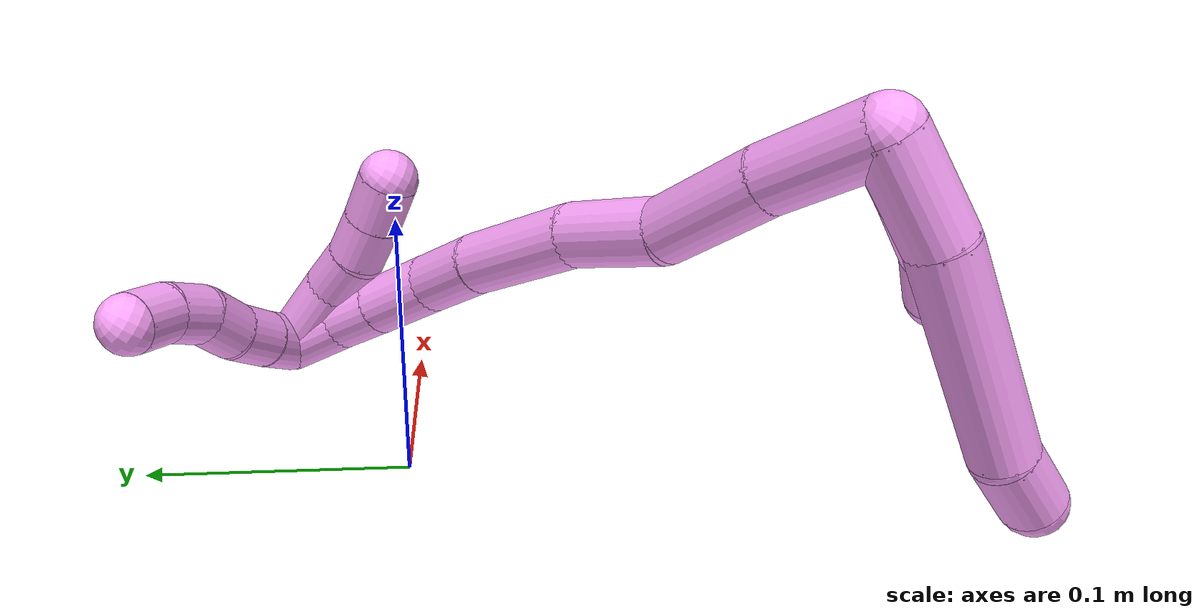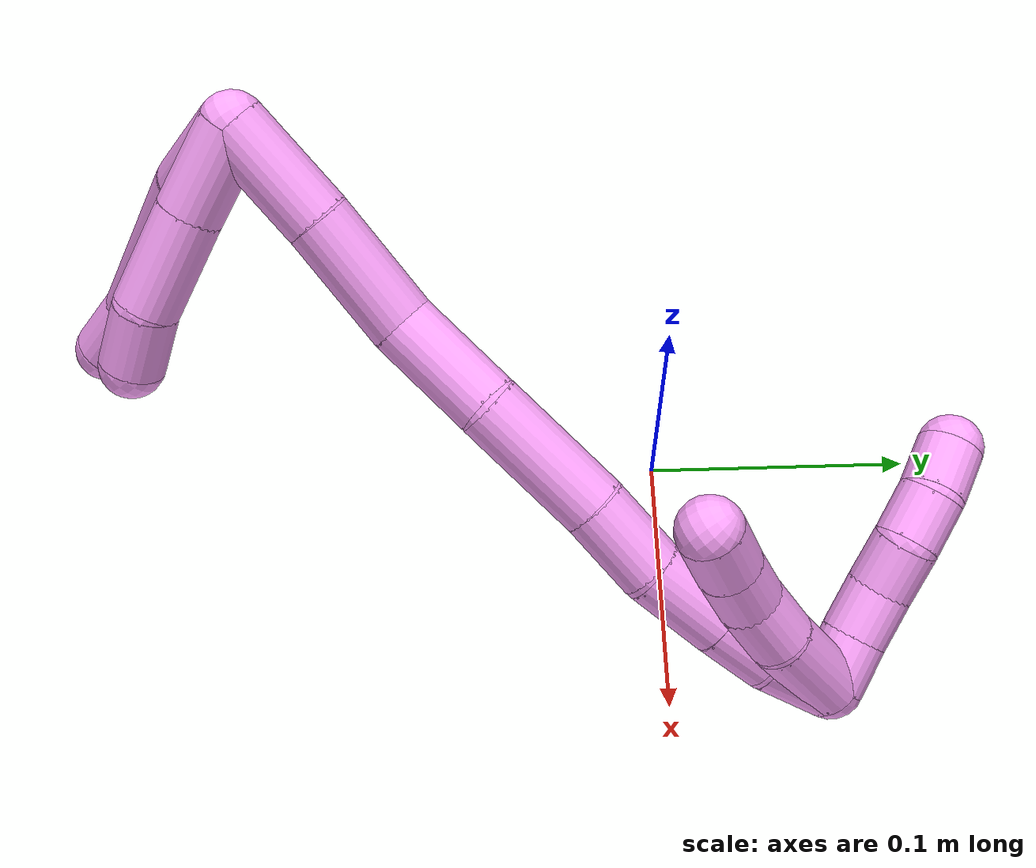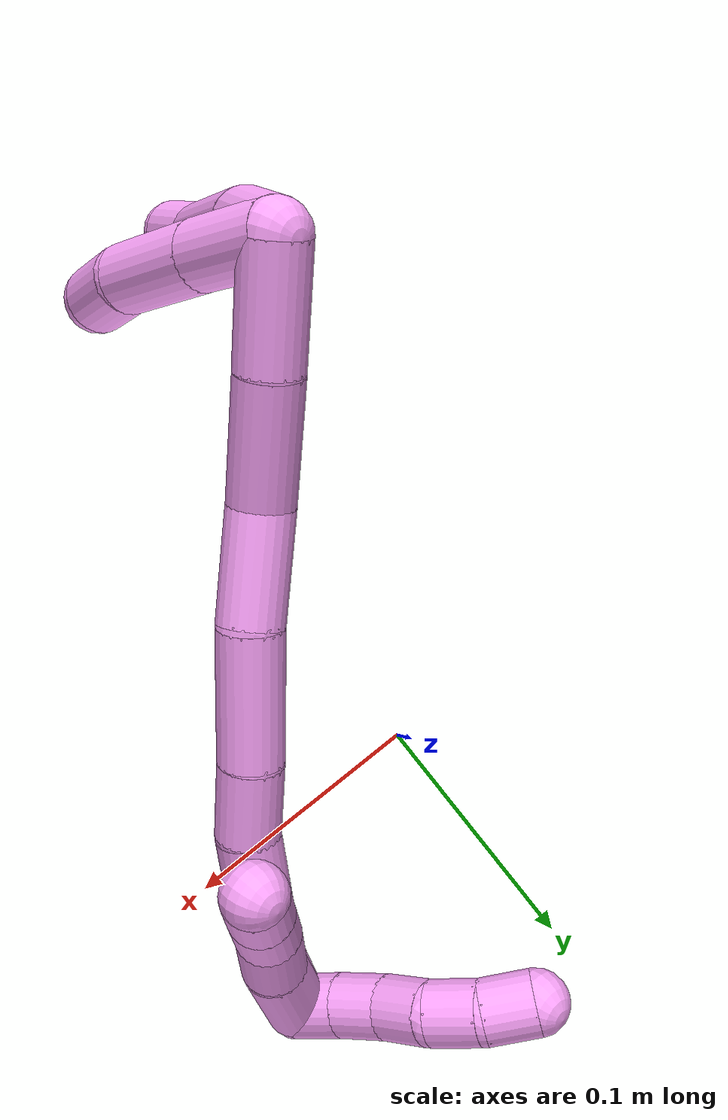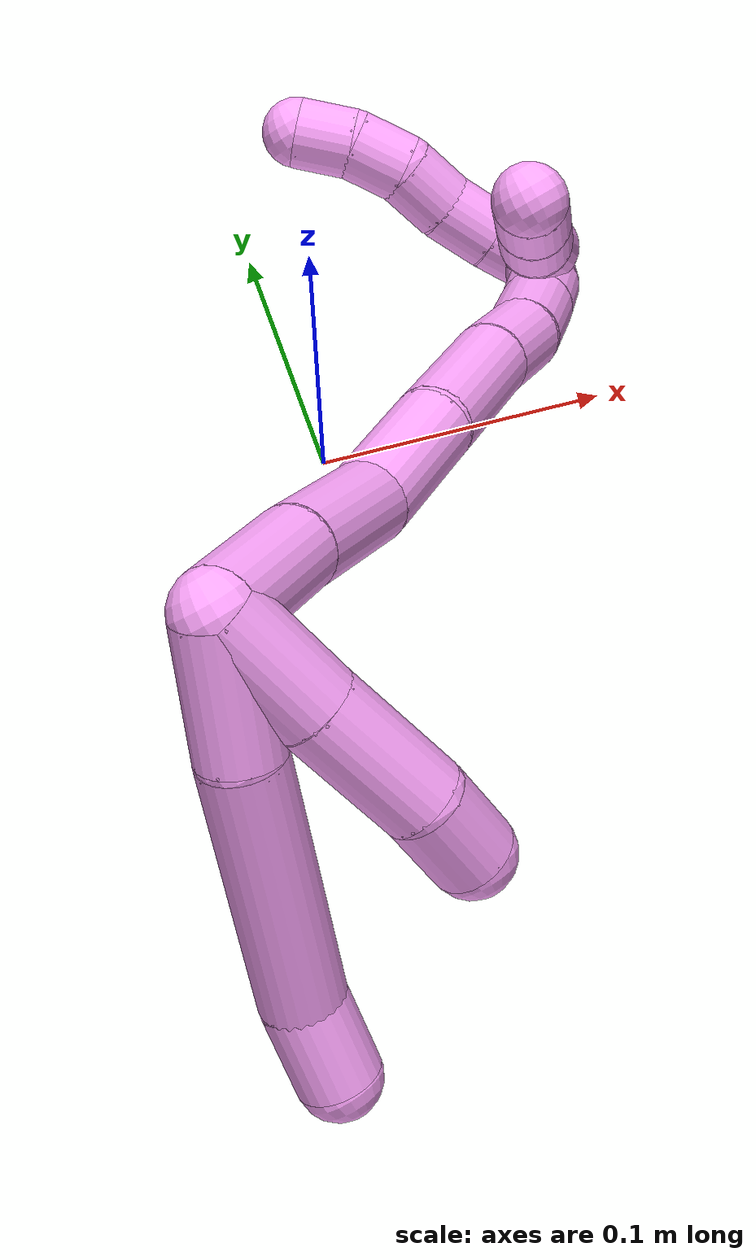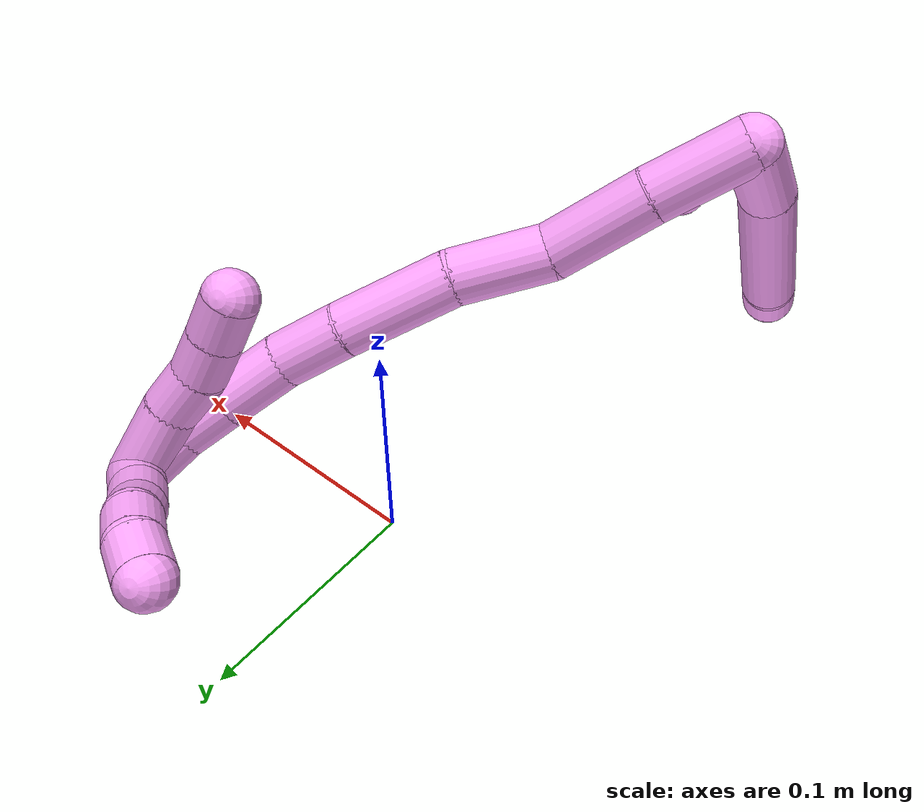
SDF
<sdf version="1.7">
 <world name="default">
  <model name="4">
   <static>0</static>
   <link name="4">
    <collision name="collision-cylinder-e_1_2_8">
     <pose>-0.006586 0.006224 -0.017818 -2.80554 -0.33571 1.56974</pose>
     <geometry><cylinder><radius>0.0125</radius><length>0.03998</length></cylinder></geometry>
     <surface>
      <friction><ode><mu>1.16</mu><mu2>1.16</mu2><slip1>0</slip1><slip2>0</slip2></ode></friction>
      <contact><ode><kp>1e+06</kp><kd>1</kd><max_vel>0</max_vel><min_depth>0.001</min_depth></ode></contact>
     </surface>
    </collision>
    <visual name="visual-cylinder-e_1_2_8">
     <pose>-0.006586 0.006224 -0.017818 -2.80554 -0.33571 1.56974</pose>
     <geometry><cylinder><radius>0.0125</radius><length>0.03998</length></cylinder></geometry>
     <material><ambient>1 0.65098 0.996078 1</ambient></material>
    </visual>
    <collision name="collision-cylinder-e_2_8_9">
     <pose>-0.023444 0.030464 -0.071618 -2.67739 -0.249963 0.977123</pose>
     <geometry><cylinder><radius>0.0125</radius><length>0.083059</length></cylinder></geometry>
     <surface>
      <friction><ode><mu>1.16</mu><mu2>1.16</mu2><slip1>0</slip1><slip2>0</slip2></ode></friction>
      <contact><ode><kp>1e+06</kp><kd>1</kd><max_vel>0</max_vel><min_depth>0.001</min_depth></ode></contact>
     </surface>
    </collision>
    <visual name="visual-cylinder-e_2_8_9">
     <pose>-0.023444 0.030464 -0.071618 -2.67739 -0.249963 0.977123</pose>
     <geometry><cylinder><radius>0.0125</radius><length>0.083059</length></cylinder></geometry>
     <material><ambient>1 0.65098 0.996078 1</ambient></material>
    </visual>
    <collision name="collision-cylinder-e_3_9_6">
     <pose>-0.035208 0.051536 -0.120643 -2.9114 -0.110844 0.894847</pose>
     <geometry><cylinder><radius>0.0125</radius><length>0.02696</length></cylinder></geometry>
     <surface>
      <friction><ode><mu>1.16</mu><mu2>1.16</mu2><slip1>0</slip1><slip2>0</slip2></ode></friction>
      <contact><ode><kp>1e+06</kp><kd>1</kd><max_vel>0</max_vel><min_depth>0.001</min_depth></ode></contact>
     </surface>
    </collision>
    <visual name="visual-cylinder-e_3_9_6">
     <pose>-0.035208 0.051536 -0.120643 -2.9114 -0.110844 0.894847</pose>
     <geometry><cylinder><radius>0.0125</radius><length>0.02696</length></cylinder></geometry>
     <material><ambient>1 0.65098 0.996078 1</ambient></material>
    </visual>
    <collision name="collision-cylinder-e_1_2_10">
     <pose>0.004621 0.00398 -0.016829 -2.90939 0.261136 -1.68913</pose>
     <geometry><cylinder><radius>0.0125</radius><length>0.035799</length></cylinder></geometry>
     <surface>
      <friction><ode><mu>1.16</mu><mu2>1.16</mu2><slip1>0</slip1><slip2>0</slip2></ode></friction>
      <contact><ode><kp>1e+06</kp><kd>1</kd><max_vel>0</max_vel><min_depth>0.001</min_depth></ode></contact>
     </surface>
    </collision>
    <visual name="visual-cylinder-e_1_2_10">
     <pose>0.004621 0.00398 -0.016829 -2.90939 0.261136 -1.68913</pose>
     <geometry><cylinder><radius>0.0125</radius><length>0.035799</length></cylinder></geometry>
     <material><ambient>1 0.65098 0.996078 1</ambient></material>
    </visual>
    <collision name="collision-cylinder-e_2_10_11">
     <pose>0.014976 0.012615 -0.051915 -2.8919 0.2954 -1.74016</pose>
     <geometry><cylinder><radius>0.0125</radius><length>0.039391</length></cylinder></geometry>
     <surface>
      <friction><ode><mu>1.16</mu><mu2>1.16</mu2><slip1>0</slip1><slip2>0</slip2></ode></friction>
      <contact><ode><kp>1e+06</kp><kd>1</kd><max_vel>0</max_vel><min_depth>0.001</min_depth></ode></contact>
     </surface>
    </collision>
    <visual name="visual-cylinder-e_2_10_11">
     <pose>0.014976 0.012615 -0.051915 -2.8919 0.2954 -1.74016</pose>
     <geometry><cylinder><radius>0.0125</radius><length>0.039391</length></cylinder></geometry>
     <material><ambient>1 0.65098 0.996078 1</ambient></material>
    </visual>
    <collision name="collision-cylinder-e_3_11_5">
     <pose>0.022797 0.022804 -0.081078 -2.67207 0.169008 -0.680756</pose>
     <geometry><cylinder><radius>0.0125</radius><length>0.02481</length></cylinder></geometry>
     <surface>
      <friction><ode><mu>1.16</mu><mu2>1.16</mu2><slip1>0</slip1><slip2>0</slip2></ode></friction>
      <contact><ode><kp>1e+06</kp><kd>1</kd><max_vel>0</max_vel><min_depth>0.001</min_depth></ode></contact>
     </surface>
    </collision>
    <visual name="visual-cylinder-e_3_11_5">
     <pose>0.022797 0.022804 -0.081078 -2.67207 0.169008 -0.680756</pose>
     <geometry><cylinder><radius>0.0125</radius><length>0.02481</length></cylinder></geometry>
     <material><ambient>1 0.65098 0.996078 1</ambient></material>
    </visual>
    <collision name="collision-cylinder-e_1_2_12">
     <pose>0.012649 0.018059 4.9e-05 -1.5681 0.61099 -0.609446</pose>
     <geometry><cylinder><radius>0.0125</radius><length>0.044096</length></cylinder></geometry>
     <surface>
      <friction><ode><mu>1.16</mu><mu2>1.16</mu2><slip1>0</slip1><slip2>0</slip2></ode></friction>
      <contact><ode><kp>1e+06</kp><kd>1</kd><max_vel>0</max_vel><min_depth>0.001</min_depth></ode></contact>
     </surface>
    </collision>
    <visual name="visual-cylinder-e_1_2_12">
     <pose>0.012649 0.018059 4.9e-05 -1.5681 0.61099 -0.609446</pose>
     <geometry><cylinder><radius>0.0125</radius><length>0.044096</length></cylinder></geometry>
     <material><ambient>1 0.65098 0.996078 1</ambient></material>
    </visual>
    <collision name="collision-cylinder-e_2_12_13">
     <pose>0.038 0.055983 -0.00149 -1.65055 0.567487 -0.611867</pose>
     <geometry><cylinder><radius>0.0125</radius><length>0.047265</length></cylinder></geometry>
     <surface>
      <friction><ode><mu>1.16</mu><mu2>1.16</mu2><slip1>0</slip1><slip2>0</slip2></ode></friction>
      <contact><ode><kp>1e+06</kp><kd>1</kd><max_vel>0</max_vel><min_depth>0.001</min_depth></ode></contact>
     </surface>
    </collision>
    <visual name="visual-cylinder-e_2_12_13">
     <pose>0.038 0.055983 -0.00149 -1.65055 0.567487 -0.611867</pose>
     <geometry><cylinder><radius>0.0125</radius><length>0.047265</length></cylinder></geometry>
     <material><ambient>1 0.65098 0.996078 1</ambient></material>
    </visual>
    <collision name="collision-cylinder-e_3_13_14">
     <pose>0.065845 0.090273 0.000365 -1.33647 0.795801 -0.64073</pose>
     <geometry><cylinder><radius>0.0125</radius><length>0.04239</length></cylinder></geometry>
     <surface>
      <friction><ode><mu>1.16</mu><mu2>1.16</mu2><slip1>0</slip1><slip2>0</slip2></ode></friction>
      <contact><ode><kp>1e+06</kp><kd>1</kd><max_vel>0</max_vel><min_depth>0.001</min_depth></ode></contact>
     </surface>
    </collision>
    <visual name="visual-cylinder-e_3_13_14">
     <pose>0.065845 0.090273 0.000365 -1.33647 0.795801 -0.64073</pose>
     <geometry><cylinder><radius>0.0125</radius><length>0.04239</length></cylinder></geometry>
     <material><ambient>1 0.65098 0.996078 1</ambient></material>
    </visual>
    <collision name="collision-cylinder-e_4_14_15">
     <pose>0.096262 0.12571 0.006252 -1.45506 0.625388 -0.560624</pose>
     <geometry><cylinder><radius>0.0125</radius><length>0.052183</length></cylinder></geometry>
     <surface>
      <friction><ode><mu>1.16</mu><mu2>1.16</mu2><slip1>0</slip1><slip2>0</slip2></ode></friction>
      <contact><ode><kp>1e+06</kp><kd>1</kd><max_vel>0</max_vel><min_depth>0.001</min_depth></ode></contact>
     </surface>
    </collision>
    <visual name="visual-cylinder-e_4_14_15">
     <pose>0.096262 0.12571 0.006252 -1.45506 0.625388 -0.560624</pose>
     <geometry><cylinder><radius>0.0125</radius><length>0.052183</length></cylinder></geometry>
     <material><ambient>1 0.65098 0.996078 1</ambient></material>
    </visual>
    <collision name="collision-cylinder-e_5_15_16">
     <pose>0.120392 0.159453 0.008764 -1.5653 0.607782 -0.604648</pose>
     <geometry><cylinder><radius>0.0125</radius><length>0.031017</length></cylinder></geometry>
     <surface>
      <friction><ode><mu>1.16</mu><mu2>1.16</mu2><slip1>0</slip1><slip2>0</slip2></ode></friction>
      <contact><ode><kp>1e+06</kp><kd>1</kd><max_vel>0</max_vel><min_depth>0.001</min_depth></ode></contact>
     </surface>
    </collision>
    <visual name="visual-cylinder-e_5_15_16">
     <pose>0.120392 0.159453 0.008764 -1.5653 0.607782 -0.604648</pose>
     <geometry><cylinder><radius>0.0125</radius><length>0.031017</length></cylinder></geometry>
     <material><ambient>1 0.65098 0.996078 1</ambient></material>
    </visual>
    <collision name="collision-cylinder-e_6_16_17">
     <pose>0.136355 0.186434 0.010896 -1.42709 0.458516 -0.398682</pose>
     <geometry><cylinder><radius>0.0125</radius><length>0.032115</length></cylinder></geometry>
     <surface>
      <friction><ode><mu>1.16</mu><mu2>1.16</mu2><slip1>0</slip1><slip2>0</slip2></ode></friction>
      <contact><ode><kp>1e+06</kp><kd>1</kd><max_vel>0</max_vel><min_depth>0.001</min_depth></ode></contact>
     </surface>
    </collision>
    <visual name="visual-cylinder-e_6_16_17">
     <pose>0.136355 0.186434 0.010896 -1.42709 0.458516 -0.398682</pose>
     <geometry><cylinder><radius>0.0125</radius><length>0.032115</length></cylinder></geometry>
     <material><ambient>1 0.65098 0.996078 1</ambient></material>
    </visual>
    <collision name="collision-cylinder-e_7_17_18">
     <pose>0.148409 0.211078 0.014855 -1.39032 0.437844 -0.366957</pose>
     <geometry><cylinder><radius>0.0125</radius><length>0.02333</length></cylinder></geometry>
     <surface>
      <friction><ode><mu>1.16</mu><mu2>1.16</mu2><slip1>0</slip1><slip2>0</slip2></ode></friction>
      <contact><ode><kp>1e+06</kp><kd>1</kd><max_vel>0</max_vel><min_depth>0.001</min_depth></ode></contact>
     </surface>
    </collision>
    <visual name="visual-cylinder-e_7_17_18">
     <pose>0.148409 0.211078 0.014855 -1.39032 0.437844 -0.366957</pose>
     <geometry><cylinder><radius>0.0125</radius><length>0.02333</length></cylinder></geometry>
     <material><ambient>1 0.65098 0.996078 1</ambient></material>
    </visual>
    <collision name="collision-cylinder-e_8_18_1">
     <pose>0.157134 0.234235 0.020395 -1.29271 0.277416 -0.209881</pose>
     <geometry><cylinder><radius>0.0125</radius><length>0.027603</length></cylinder></geometry>
     <surface>
      <friction><ode><mu>1.16</mu><mu2>1.16</mu2><slip1>0</slip1><slip2>0</slip2></ode></friction>
      <contact><ode><kp>1e+06</kp><kd>1</kd><max_vel>0</max_vel><min_depth>0.001</min_depth></ode></contact>
     </surface>
    </collision>
    <visual name="visual-cylinder-e_8_18_1">
     <pose>0.157134 0.234235 0.020395 -1.29271 0.277416 -0.209881</pose>
     <geometry><cylinder><radius>0.0125</radius><length>0.027603</length></cylinder></geometry>
     <material><ambient>1 0.65098 0.996078 1</ambient></material>
    </visual>
    <collision name="collision-cylinder-e_1_1_19">
     <pose>0.159232 0.228795 0.026402 1.44171 -0.091364 -0.080284</pose>
     <geometry><cylinder><radius>0.0125</radius><length>0.036868</length></cylinder></geometry>
     <surface>
      <friction><ode><mu>1.16</mu><mu2>1.16</mu2><slip1>0</slip1><slip2>0</slip2></ode></friction>
      <contact><ode><kp>1e+06</kp><kd>1</kd><max_vel>0</max_vel><min_depth>0.001</min_depth></ode></contact>
     </surface>
    </collision>
    <visual name="visual-cylinder-e_1_1_19">
     <pose>0.159232 0.228795 0.026402 1.44171 -0.091364 -0.080284</pose>
     <geometry><cylinder><radius>0.0125</radius><length>0.036868</length></cylinder></geometry>
     <material><ambient>1 0.65098 0.996078 1</ambient></material>
    </visual>
    <collision name="collision-cylinder-e_2_19_20">
     <pose>0.154722 0.200072 0.030603 1.39784 -0.258981 -0.218017</pose>
     <geometry><cylinder><radius>0.0125</radius><length>0.022093</length></cylinder></geometry>
     <surface>
      <friction><ode><mu>1.16</mu><mu2>1.16</mu2><slip1>0</slip1><slip2>0</slip2></ode></friction>
      <contact><ode><kp>1e+06</kp><kd>1</kd><max_vel>0</max_vel><min_depth>0.001</min_depth></ode></contact>
     </surface>
    </collision>
    <visual name="visual-cylinder-e_2_19_20">
     <pose>0.154722 0.200072 0.030603 1.39784 -0.258981 -0.218017</pose>
     <geometry><cylinder><radius>0.0125</radius><length>0.022093</length></cylinder></geometry>
     <material><ambient>1 0.65098 0.996078 1</ambient></material>
    </visual>
    <collision name="collision-cylinder-e_3_20_21">
     <pose>0.151034 0.179948 0.035489 1.26341 -0.08504 -0.062244</pose>
     <geometry><cylinder><radius>0.0125</radius><length>0.020227</length></cylinder></geometry>
     <surface>
      <friction><ode><mu>1.16</mu><mu2>1.16</mu2><slip1>0</slip1><slip2>0</slip2></ode></friction>
      <contact><ode><kp>1e+06</kp><kd>1</kd><max_vel>0</max_vel><min_depth>0.001</min_depth></ode></contact>
     </surface>
    </collision>
    <visual name="visual-cylinder-e_3_20_21">
     <pose>0.151034 0.179948 0.035489 1.26341 -0.08504 -0.062244</pose>
     <geometry><cylinder><radius>0.0125</radius><length>0.020227</length></cylinder></geometry>
     <material><ambient>1 0.65098 0.996078 1</ambient></material>
    </visual>
    <collision name="collision-cylinder-e_4_21_4">
     <pose>0.149435 0.160618 0.042165 1.2139 -0.07109 -0.049375</pose>
     <geometry><cylinder><radius>0.0125</radius><length>0.020812</length></cylinder></geometry>
     <surface>
      <friction><ode><mu>1.16</mu><mu2>1.16</mu2><slip1>0</slip1><slip2>0</slip2></ode></friction>
      <contact><ode><kp>1e+06</kp><kd>1</kd><max_vel>0</max_vel><min_depth>0.001</min_depth></ode></contact>
     </surface>
    </collision>
    <visual name="visual-cylinder-e_4_21_4">
     <pose>0.149435 0.160618 0.042165 1.2139 -0.07109 -0.049375</pose>
     <geometry><cylinder><radius>0.0125</radius><length>0.020812</length></cylinder></geometry>
     <material><ambient>1 0.65098 0.996078 1</ambient></material>
    </visual>
    <collision name="collision-cylinder-e_1_1_22">
     <pose>0.155438 0.24632 0.032378 0.081247 -0.57955 -0.024237</pose>
     <geometry><cylinder><radius>0.0125</radius><length>0.02</length></cylinder></geometry>
     <surface>
      <friction><ode><mu>1.16</mu><mu2>1.16</mu2><slip1>0</slip1><slip2>0</slip2></ode></friction>
      <contact><ode><kp>1e+06</kp><kd>1</kd><max_vel>0</max_vel><min_depth>0.001</min_depth></ode></contact>
     </surface>
    </collision>
    <visual name="visual-cylinder-e_1_1_22">
     <pose>0.155438 0.24632 0.032378 0.081247 -0.57955 -0.024237</pose>
     <geometry><cylinder><radius>0.0125</radius><length>0.02</length></cylinder></geometry>
     <material><ambient>1 0.65098 0.996078 1</ambient></material>
    </visual>
    <collision name="collision-cylinder-e_2_22_23">
     <pose>0.145107 0.24474 0.049414 0.103205 -0.50683 -0.02675</pose>
     <geometry><cylinder><radius>0.0125</radius><length>0.02</length></cylinder></geometry>
     <surface>
      <friction><ode><mu>1.16</mu><mu2>1.16</mu2><slip1>0</slip1><slip2>0</slip2></ode></friction>
      <contact><ode><kp>1e+06</kp><kd>1</kd><max_vel>0</max_vel><min_depth>0.001</min_depth></ode></contact>
     </surface>
    </collision>
    <visual name="visual-cylinder-e_2_22_23">
     <pose>0.145107 0.24474 0.049414 0.103205 -0.50683 -0.02675</pose>
     <geometry><cylinder><radius>0.0125</radius><length>0.02</length></cylinder></geometry>
     <material><ambient>1 0.65098 0.996078 1</ambient></material>
    </visual>
    <collision name="collision-cylinder-e_3_23_24">
     <pose>0.13674 0.241659 0.067216 0.235079 -0.358919 -0.042837</pose>
     <geometry><cylinder><radius>0.0125</radius><length>0.02</length></cylinder></geometry>
     <surface>
      <friction><ode><mu>1.16</mu><mu2>1.16</mu2><slip1>0</slip1><slip2>0</slip2></ode></friction>
      <contact><ode><kp>1e+06</kp><kd>1</kd><max_vel>0</max_vel><min_depth>0.001</min_depth></ode></contact>
     </surface>
    </collision>
    <visual name="visual-cylinder-e_3_23_24">
     <pose>0.13674 0.241659 0.067216 0.235079 -0.358919 -0.042837</pose>
     <geometry><cylinder><radius>0.0125</radius><length>0.02</length></cylinder></geometry>
     <material><ambient>1 0.65098 0.996078 1</ambient></material>
    </visual>
    <collision name="collision-cylinder-e_4_24_25">
     <pose>0.127498 0.239649 0.084515 -0.020862 -0.61017 0.00657</pose>
     <geometry><cylinder><radius>0.0125</radius><length>0.02</length></cylinder></geometry>
     <surface>
      <friction><ode><mu>1.16</mu><mu2>1.16</mu2><slip1>0</slip1><slip2>0</slip2></ode></friction>
      <contact><ode><kp>1e+06</kp><kd>1</kd><max_vel>0</max_vel><min_depth>0.001</min_depth></ode></contact>
     </surface>
    </collision>
    <visual name="visual-cylinder-e_4_24_25">
     <pose>0.127498 0.239649 0.084515 -0.020862 -0.61017 0.00657</pose>
     <geometry><cylinder><radius>0.0125</radius><length>0.02</length></cylinder></geometry>
     <material><ambient>1 0.65098 0.996078 1</ambient></material>
    </visual>
    <collision name="collision-cylinder-e_5_25_3">
     <pose>0.11436 0.241137 0.099296 -0.197345 -0.834167 0.087668</pose>
     <geometry><cylinder><radius>0.0125</radius><length>0.02</length></cylinder></geometry>
     <surface>
      <friction><ode><mu>1.16</mu><mu2>1.16</mu2><slip1>0</slip1><slip2>0</slip2></ode></friction>
      <contact><ode><kp>1e+06</kp><kd>1</kd><max_vel>0</max_vel><min_depth>0.001</min_depth></ode></contact>
     </surface>
    </collision>
    <visual name="visual-cylinder-e_5_25_3">
     <pose>0.11436 0.241137 0.099296 -0.197345 -0.834167 0.087668</pose>
     <geometry><cylinder><radius>0.0125</radius><length>0.02</length></cylinder></geometry>
     <material><ambient>1 0.65098 0.996078 1</ambient></material>
    </visual>
    <collision name="collision-sphere-3">
     <pose>0.106953 0.242454 0.105884 0 -0 0</pose>
     <geometry><sphere><radius>0.0125</radius></sphere></geometry>
     <surface>
      <friction><ode><mu>1.16</mu><mu2>1.16</mu2><slip1>0</slip1><slip2>0</slip2></ode></friction>
      <contact><ode><kp>1e+06</kp><kd>1</kd><max_vel>0</max_vel><min_depth>0.001</min_depth></ode></contact>
     </surface>
    </collision>
    <visual name="visual-sphere-3">
     <pose>0.106953 0.242454 0.105884 0 -0 0</pose>
     <geometry><sphere><radius>0.0125</radius></sphere></geometry>
     <material><ambient>1 0.65098 0.996078 1</ambient></material>
    </visual>
    <collision name="collision-sphere-25">
     <pose>0.121768 0.23982 0.092709 0 -0 0</pose>
     <geometry><sphere><radius>0.0125</radius></sphere></geometry>
     <surface>
      <friction><ode><mu>1.16</mu><mu2>1.16</mu2><slip1>0</slip1><slip2>0</slip2></ode></friction>
      <contact><ode><kp>1e+06</kp><kd>1</kd><max_vel>0</max_vel><min_depth>0.001</min_depth></ode></contact>
     </surface>
    </collision>
    <visual name="visual-sphere-25">
     <pose>0.121768 0.23982 0.092709 0 -0 0</pose>
     <geometry><sphere><radius>0.0125</radius></sphere></geometry>
     <material><ambient>1 0.65098 0.996078 1</ambient></material>
    </visual>
    <collision name="collision-sphere-24">
     <pose>0.133228 0.239478 0.076321 0 -0 0</pose>
     <geometry><sphere><radius>0.0125</radius></sphere></geometry>
     <surface>
      <friction><ode><mu>1.16</mu><mu2>1.16</mu2><slip1>0</slip1><slip2>0</slip2></ode></friction>
      <contact><ode><kp>1e+06</kp><kd>1</kd><max_vel>0</max_vel><min_depth>0.001</min_depth></ode></contact>
     </surface>
    </collision>
    <visual name="visual-sphere-24">
     <pose>0.133228 0.239478 0.076321 0 -0 0</pose>
     <geometry><sphere><radius>0.0125</radius></sphere></geometry>
     <material><ambient>1 0.65098 0.996078 1</ambient></material>
    </visual>
    <collision name="collision-sphere-23">
     <pose>0.140253 0.24384 0.058111 0 -0 0</pose>
     <geometry><sphere><radius>0.0125</radius></sphere></geometry>
     <surface>
      <friction><ode><mu>1.16</mu><mu2>1.16</mu2><slip1>0</slip1><slip2>0</slip2></ode></friction>
      <contact><ode><kp>1e+06</kp><kd>1</kd><max_vel>0</max_vel><min_depth>0.001</min_depth></ode></contact>
     </surface>
    </collision>
    <visual name="visual-sphere-23">
     <pose>0.140253 0.24384 0.058111 0 -0 0</pose>
     <geometry><sphere><radius>0.0125</radius></sphere></geometry>
     <material><ambient>1 0.65098 0.996078 1</ambient></material>
    </visual>
    <collision name="collision-sphere-22">
     <pose>0.149961 0.245641 0.040718 0 -0 0</pose>
     <geometry><sphere><radius>0.0125</radius></sphere></geometry>
     <surface>
      <friction><ode><mu>1.16</mu><mu2>1.16</mu2><slip1>0</slip1><slip2>0</slip2></ode></friction>
      <contact><ode><kp>1e+06</kp><kd>1</kd><max_vel>0</max_vel><min_depth>0.001</min_depth></ode></contact>
     </surface>
    </collision>
    <visual name="visual-sphere-22">
     <pose>0.149961 0.245641 0.040718 0 -0 0</pose>
     <geometry><sphere><radius>0.0125</radius></sphere></geometry>
     <material><ambient>1 0.65098 0.996078 1</ambient></material>
    </visual>
    <collision name="collision-sphere-4">
     <pose>0.148696 0.150892 0.045791 0 -0 0</pose>
     <geometry><sphere><radius>0.0125</radius></sphere></geometry>
     <surface>
      <friction><ode><mu>1.16</mu><mu2>1.16</mu2><slip1>0</slip1><slip2>0</slip2></ode></friction>
      <contact><ode><kp>1e+06</kp><kd>1</kd><max_vel>0</max_vel><min_depth>0.001</min_depth></ode></contact>
     </surface>
    </collision>
    <visual name="visual-sphere-4">
     <pose>0.148696 0.150892 0.045791 0 -0 0</pose>
     <geometry><sphere><radius>0.0125</radius></sphere></geometry>
     <material><ambient>1 0.65098 0.996078 1</ambient></material>
    </visual>
    <collision name="collision-sphere-21">
     <pose>0.150175 0.170344 0.038538 0 -0 0</pose>
     <geometry><sphere><radius>0.0125</radius></sphere></geometry>
     <surface>
      <friction><ode><mu>1.16</mu><mu2>1.16</mu2><slip1>0</slip1><slip2>0</slip2></ode></friction>
      <contact><ode><kp>1e+06</kp><kd>1</kd><max_vel>0</max_vel><min_depth>0.001</min_depth></ode></contact>
     </surface>
    </collision>
    <visual name="visual-sphere-21">
     <pose>0.150175 0.170344 0.038538 0 -0 0</pose>
     <geometry><sphere><radius>0.0125</radius></sphere></geometry>
     <material><ambient>1 0.65098 0.996078 1</ambient></material>
    </visual>
    <collision name="collision-sphere-20">
     <pose>0.151893 0.189553 0.03244 0 -0 0</pose>
     <geometry><sphere><radius>0.0125</radius></sphere></geometry>
     <surface>
      <friction><ode><mu>1.16</mu><mu2>1.16</mu2><slip1>0</slip1><slip2>0</slip2></ode></friction>
      <contact><ode><kp>1e+06</kp><kd>1</kd><max_vel>0</max_vel><min_depth>0.001</min_depth></ode></contact>
     </surface>
    </collision>
    <visual name="visual-sphere-20">
     <pose>0.151893 0.189553 0.03244 0 -0 0</pose>
     <geometry><sphere><radius>0.0125</radius></sphere></geometry>
     <material><ambient>1 0.65098 0.996078 1</ambient></material>
    </visual>
    <collision name="collision-sphere-11">
     <pose>0.02071 0.017271 -0.070173 0 -0 0</pose>
     <geometry><sphere><radius>0.0125</radius></sphere></geometry>
     <surface>
      <friction><ode><mu>1.16</mu><mu2>1.16</mu2><slip1>0</slip1><slip2>0</slip2></ode></friction>
      <contact><ode><kp>1e+06</kp><kd>1</kd><max_vel>0</max_vel><min_depth>0.001</min_depth></ode></contact>
     </surface>
    </collision>
    <visual name="visual-sphere-11">
     <pose>0.02071 0.017271 -0.070173 0 -0 0</pose>
     <geometry><sphere><radius>0.0125</radius></sphere></geometry>
     <material><ambient>1 0.65098 0.996078 1</ambient></material>
    </visual>
    <collision name="collision-sphere-10">
     <pose>0.009243 0.007959 -0.033657 0 -0 0</pose>
     <geometry><sphere><radius>0.0125</radius></sphere></geometry>
     <surface>
      <friction><ode><mu>1.16</mu><mu2>1.16</mu2><slip1>0</slip1><slip2>0</slip2></ode></friction>
      <contact><ode><kp>1e+06</kp><kd>1</kd><max_vel>0</max_vel><min_depth>0.001</min_depth></ode></contact>
     </surface>
    </collision>
    <visual name="visual-sphere-10">
     <pose>0.009243 0.007959 -0.033657 0 -0 0</pose>
     <geometry><sphere><radius>0.0125</radius></sphere></geometry>
     <material><ambient>1 0.65098 0.996078 1</ambient></material>
    </visual>
    <collision name="collision-sphere-6">
     <pose>-0.0367 0.054593 -0.133687 0 -0 0</pose>
     <geometry><sphere><radius>0.0125</radius></sphere></geometry>
     <surface>
      <friction><ode><mu>1.16</mu><mu2>1.16</mu2><slip1>0</slip1><slip2>0</slip2></ode></friction>
      <contact><ode><kp>1e+06</kp><kd>1</kd><max_vel>0</max_vel><min_depth>0.001</min_depth></ode></contact>
     </surface>
    </collision>
    <visual name="visual-sphere-6">
     <pose>-0.0367 0.054593 -0.133687 0 -0 0</pose>
     <geometry><sphere><radius>0.0125</radius></sphere></geometry>
     <material><ambient>1 0.65098 0.996078 1</ambient></material>
    </visual>
    <collision name="collision-sphere-9">
     <pose>-0.033717 0.048479 -0.107598 0 -0 0</pose>
     <geometry><sphere><radius>0.0125</radius></sphere></geometry>
     <surface>
      <friction><ode><mu>1.16</mu><mu2>1.16</mu2><slip1>0</slip1><slip2>0</slip2></ode></friction>
      <contact><ode><kp>1e+06</kp><kd>1</kd><max_vel>0</max_vel><min_depth>0.001</min_depth></ode></contact>
     </surface>
    </collision>
    <visual name="visual-sphere-9">
     <pose>-0.033717 0.048479 -0.107598 0 -0 0</pose>
     <geometry><sphere><radius>0.0125</radius></sphere></geometry>
     <material><ambient>1 0.65098 0.996078 1</ambient></material>
    </visual>
    <collision name="collision-sphere-2">
     <geometry><sphere><radius>0.0125</radius></sphere></geometry>
     <surface>
      <friction><ode><mu>1.16</mu><mu2>1.16</mu2><slip1>0</slip1><slip2>0</slip2></ode></friction>
      <contact><ode><kp>1e+06</kp><kd>1</kd><max_vel>0</max_vel><min_depth>0.001</min_depth></ode></contact>
     </surface>
    </collision>
    <visual name="visual-sphere-2">
     <geometry><sphere><radius>0.0125</radius></sphere></geometry>
     <material><ambient>1 0.65098 0.996078 1</ambient></material>
    </visual>
    <collision name="collision-sphere-19">
     <pose>0.15755 0.210591 0.028765 0 -0 0</pose>
     <geometry><sphere><radius>0.0125</radius></sphere></geometry>
     <surface>
      <friction><ode><mu>1.16</mu><mu2>1.16</mu2><slip1>0</slip1><slip2>0</slip2></ode></friction>
      <contact><ode><kp>1e+06</kp><kd>1</kd><max_vel>0</max_vel><min_depth>0.001</min_depth></ode></contact>
     </surface>
    </collision>
    <visual name="visual-sphere-19">
     <pose>0.15755 0.210591 0.028765 0 -0 0</pose>
     <geometry><sphere><radius>0.0125</radius></sphere></geometry>
     <material><ambient>1 0.65098 0.996078 1</ambient></material>
    </visual>
    <collision name="collision-sphere-8">
     <pose>-0.013171 0.012448 -0.035637 0 -0 0</pose>
     <geometry><sphere><radius>0.0125</radius></sphere></geometry>
     <surface>
      <friction><ode><mu>1.16</mu><mu2>1.16</mu2><slip1>0</slip1><slip2>0</slip2></ode></friction>
      <contact><ode><kp>1e+06</kp><kd>1</kd><max_vel>0</max_vel><min_depth>0.001</min_depth></ode></contact>
     </surface>
    </collision>
    <visual name="visual-sphere-8">
     <pose>-0.013171 0.012448 -0.035637 0 -0 0</pose>
     <geometry><sphere><radius>0.0125</radius></sphere></geometry>
     <material><ambient>1 0.65098 0.996078 1</ambient></material>
    </visual>
    <collision name="collision-sphere-5">
     <pose>0.024883 0.028337 -0.091983 0 -0 0</pose>
     <geometry><sphere><radius>0.0125</radius></sphere></geometry>
     <surface>
      <friction><ode><mu>1.16</mu><mu2>1.16</mu2><slip1>0</slip1><slip2>0</slip2></ode></friction>
      <contact><ode><kp>1e+06</kp><kd>1</kd><max_vel>0</max_vel><min_depth>0.001</min_depth></ode></contact>
     </surface>
    </collision>
    <visual name="visual-sphere-5">
     <pose>0.024883 0.028337 -0.091983 0 -0 0</pose>
     <geometry><sphere><radius>0.0125</radius></sphere></geometry>
     <material><ambient>1 0.65098 0.996078 1</ambient></material>
    </visual>
    <collision name="collision-sphere-12">
     <pose>0.025297 0.036118 9.7e-05 0 -0 0</pose>
     <geometry><sphere><radius>0.0125</radius></sphere></geometry>
     <surface>
      <friction><ode><mu>1.16</mu><mu2>1.16</mu2><slip1>0</slip1><slip2>0</slip2></ode></friction>
      <contact><ode><kp>1e+06</kp><kd>1</kd><max_vel>0</max_vel><min_depth>0.001</min_depth></ode></contact>
     </surface>
    </collision>
    <visual name="visual-sphere-12">
     <pose>0.025297 0.036118 9.7e-05 0 -0 0</pose>
     <geometry><sphere><radius>0.0125</radius></sphere></geometry>
     <material><ambient>1 0.65098 0.996078 1</ambient></material>
    </visual>
    <collision name="collision-sphere-13">
     <pose>0.050703 0.075848 -0.003078 0 -0 0</pose>
     <geometry><sphere><radius>0.0125</radius></sphere></geometry>
     <surface>
      <friction><ode><mu>1.16</mu><mu2>1.16</mu2><slip1>0</slip1><slip2>0</slip2></ode></friction>
      <contact><ode><kp>1e+06</kp><kd>1</kd><max_vel>0</max_vel><min_depth>0.001</min_depth></ode></contact>
     </surface>
    </collision>
    <visual name="visual-sphere-13">
     <pose>0.050703 0.075848 -0.003078 0 -0 0</pose>
     <geometry><sphere><radius>0.0125</radius></sphere></geometry>
     <material><ambient>1 0.65098 0.996078 1</ambient></material>
    </visual>
    <collision name="collision-sphere-14">
     <pose>0.080987 0.104698 0.003809 0 -0 0</pose>
     <geometry><sphere><radius>0.0125</radius></sphere></geometry>
     <surface>
      <friction><ode><mu>1.16</mu><mu2>1.16</mu2><slip1>0</slip1><slip2>0</slip2></ode></friction>
      <contact><ode><kp>1e+06</kp><kd>1</kd><max_vel>0</max_vel><min_depth>0.001</min_depth></ode></contact>
     </surface>
    </collision>
    <visual name="visual-sphere-14">
     <pose>0.080987 0.104698 0.003809 0 -0 0</pose>
     <geometry><sphere><radius>0.0125</radius></sphere></geometry>
     <material><ambient>1 0.65098 0.996078 1</ambient></material>
    </visual>
    <collision name="collision-sphere-15">
     <pose>0.111536 0.146722 0.008694 0 -0 0</pose>
     <geometry><sphere><radius>0.0125</radius></sphere></geometry>
     <surface>
      <friction><ode><mu>1.16</mu><mu2>1.16</mu2><slip1>0</slip1><slip2>0</slip2></ode></friction>
      <contact><ode><kp>1e+06</kp><kd>1</kd><max_vel>0</max_vel><min_depth>0.001</min_depth></ode></contact>
     </surface>
    </collision>
    <visual name="visual-sphere-15">
     <pose>0.111536 0.146722 0.008694 0 -0 0</pose>
     <geometry><sphere><radius>0.0125</radius></sphere></geometry>
     <material><ambient>1 0.65098 0.996078 1</ambient></material>
    </visual>
    <collision name="collision-sphere-16">
     <pose>0.129248 0.172184 0.008834 0 -0 0</pose>
     <geometry><sphere><radius>0.0125</radius></sphere></geometry>
     <surface>
      <friction><ode><mu>1.16</mu><mu2>1.16</mu2><slip1>0</slip1><slip2>0</slip2></ode></friction>
      <contact><ode><kp>1e+06</kp><kd>1</kd><max_vel>0</max_vel><min_depth>0.001</min_depth></ode></contact>
     </surface>
    </collision>
    <visual name="visual-sphere-16">
     <pose>0.129248 0.172184 0.008834 0 -0 0</pose>
     <geometry><sphere><radius>0.0125</radius></sphere></geometry>
     <material><ambient>1 0.65098 0.996078 1</ambient></material>
    </visual>
    <collision name="collision-sphere-17">
     <pose>0.143463 0.200685 0.012958 0 -0 0</pose>
     <geometry><sphere><radius>0.0125</radius></sphere></geometry>
     <surface>
      <friction><ode><mu>1.16</mu><mu2>1.16</mu2><slip1>0</slip1><slip2>0</slip2></ode></friction>
      <contact><ode><kp>1e+06</kp><kd>1</kd><max_vel>0</max_vel><min_depth>0.001</min_depth></ode></contact>
     </surface>
    </collision>
    <visual name="visual-sphere-17">
     <pose>0.143463 0.200685 0.012958 0 -0 0</pose>
     <geometry><sphere><radius>0.0125</radius></sphere></geometry>
     <material><ambient>1 0.65098 0.996078 1</ambient></material>
    </visual>
    <collision name="collision-sphere-18">
     <pose>0.153355 0.221471 0.016751 0 -0 0</pose>
     <geometry><sphere><radius>0.0125</radius></sphere></geometry>
     <surface>
      <friction><ode><mu>1.16</mu><mu2>1.16</mu2><slip1>0</slip1><slip2>0</slip2></ode></friction>
      <contact><ode><kp>1e+06</kp><kd>1</kd><max_vel>0</max_vel><min_depth>0.001</min_depth></ode></contact>
     </surface>
    </collision>
    <visual name="visual-sphere-18">
     <pose>0.153355 0.221471 0.016751 0 -0 0</pose>
     <geometry><sphere><radius>0.0125</radius></sphere></geometry>
     <material><ambient>1 0.65098 0.996078 1</ambient></material>
    </visual>
    <collision name="collision-sphere-1">
     <pose>0.160914 0.246999 0.024039 0 -0 0</pose>
     <geometry><sphere><radius>0.0125</radius></sphere></geometry>
     <surface>
      <friction><ode><mu>1.16</mu><mu2>1.16</mu2><slip1>0</slip1><slip2>0</slip2></ode></friction>
      <contact><ode><kp>1e+06</kp><kd>1</kd><max_vel>0</max_vel><min_depth>0.001</min_depth></ode></contact>
     </surface>
    </collision>
    <visual name="visual-sphere-1">
     <pose>0.160914 0.246999 0.024039 0 -0 0</pose>
     <geometry><sphere><radius>0.0125</radius></sphere></geometry>
     <material><ambient>1 0.65098 0.996078 1</ambient></material>
    </visual>
    <inertial>
     <pose>0.071039 0.114179 -0.003822 0 -0 0</pose>
     <mass>0.75</mass>
     <inertia>
      <ixx>0.000102</ixx>
      <ixy>0</ixy>
      <ixz>0</ixz>
      <iyy>3.9e-05</iyy>
      <iyz>0</iyz>
      <izz>-8.3e-05</izz>
     </inertia>
    </inertial>
   </link>
   <pose>-0.063408 -0.151208 0.143981 -0.87692 -0.233954 0.18392</pose>
  </model>
 </world>
</sdf>
